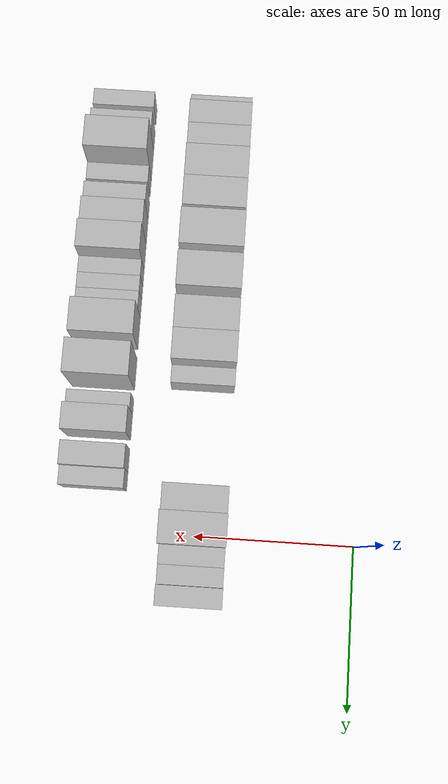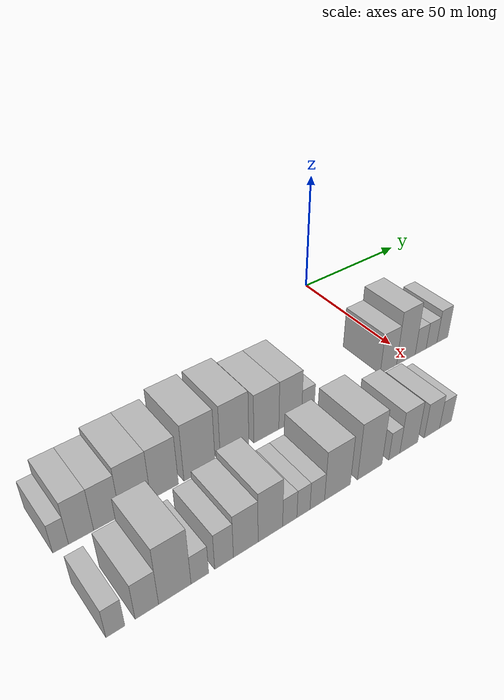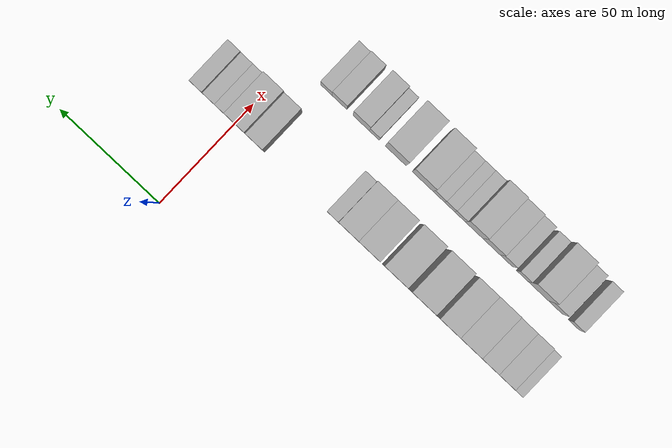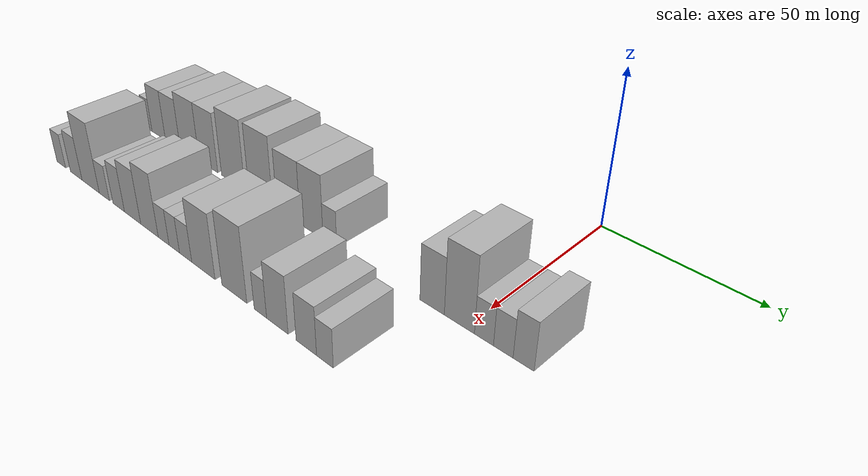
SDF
<sdf version="1.6">
 <world name="default">
  <model name="building_14">
   <static>1</static>
   <pose>50.0000 -140.4403 0 0.000000 0.000000 0.000000</pose>
   <link name="link">
    <pose>0 0 6.00 0 0 0</pose>
    <collision name="collision"><geometry><box><size>20.0000 4.8661 12.0000</size></box></geometry></collision>
    <visual name="visual">
     <cast_shadows>0</cast_shadows>
     <geometry><box><size>20.0000 4.8661 12.0000</size></box></geometry>
     <material>
      <script>
       <uri>model://HANNAS_wall/materials/scripts</uri>
       <uri>model://HANNAS_wall/materials/textures</uri>
       <name>vrc/HANNAS_wall</name>
      </script>
     </material>
    </visual>
   </link>
  </model>
  <model name="building_15">
   <static>1</static>
   <pose>50.0000 -134.0375 0 0.000000 0.000000 0.000000</pose>
   <link name="link">
    <pose>0 0 9.00 0 0 0</pose>
    <collision name="collision"><geometry><box><size>20.0000 7.9396 18.0000</size></box></geometry></collision>
    <visual name="visual">
     <cast_shadows>0</cast_shadows>
     <geometry><box><size>20.0000 7.9396 18.0000</size></box></geometry>
     <material>
      <script>
       <uri>model://HANNAS_wall/materials/scripts</uri>
       <uri>model://HANNAS_wall/materials/textures</uri>
       <name>vrc/HANNAS_wall</name>
      </script>
     </material>
    </visual>
   </link>
  </model>
  <model name="building_16">
   <static>1</static>
   <pose>50.0000 -125.7785 0 0.000000 0.000000 0.000000</pose>
   <link name="link">
    <pose>0 0 9.00 0 0 0</pose>
    <collision name="collision"><geometry><box><size>20.0000 8.5782 18.0000</size></box></geometry></collision>
    <visual name="visual">
     <cast_shadows>0</cast_shadows>
     <geometry><box><size>20.0000 8.5782 18.0000</size></box></geometry>
     <material>
      <script>
       <uri>model://HANNAS_wall/materials/scripts</uri>
       <uri>model://HANNAS_wall/materials/textures</uri>
       <name>vrc/HANNAS_wall</name>
      </script>
     </material>
    </visual>
   </link>
  </model>
  <model name="building_17">
   <static>1</static>
   <pose>50.0000 -116.2439 0 0.000000 0.000000 0.000000</pose>
   <link name="link">
    <pose>0 0 10.50 0 0 0</pose>
    <collision name="collision"><geometry><box><size>20.0000 10.4910 21.0000</size></box></geometry></collision>
    <visual name="visual">
     <cast_shadows>0</cast_shadows>
     <geometry><box><size>20.0000 10.4910 21.0000</size></box></geometry>
     <material>
      <script>
       <uri>model://HANNAS_wall/materials/scripts</uri>
       <uri>model://HANNAS_wall/materials/textures</uri>
       <name>vrc/HANNAS_wall</name>
      </script>
     </material>
    </visual>
   </link>
  </model>
  <model name="building_18">
   <static>1</static>
   <pose>50.0000 -106.0777 0 0.000000 0.000000 0.000000</pose>
   <link name="link">
    <pose>0 0 10.50 0 0 0</pose>
    <collision name="collision"><geometry><box><size>20.0000 9.8415 21.0000</size></box></geometry></collision>
    <visual name="visual">
     <cast_shadows>0</cast_shadows>
     <geometry><box><size>20.0000 9.8415 21.0000</size></box></geometry>
     <material>
      <script>
       <uri>model://HANNAS_wall/materials/scripts</uri>
       <uri>model://HANNAS_wall/materials/textures</uri>
       <name>vrc/HANNAS_wall</name>
      </script>
     </material>
    </visual>
   </link>
  </model>
  <model name="building_19">
   <static>1</static>
   <pose>50.0000 -93.3083 0 0.000000 0.000000 0.000000</pose>
   <link name="link">
    <pose>0 0 12.00 0 0 0</pose>
    <collision name="collision"><geometry><box><size>20.0000 11.6972 24.0000</size></box></geometry></collision>
    <visual name="visual">
     <cast_shadows>0</cast_shadows>
     <geometry><box><size>20.0000 11.6972 24.0000</size></box></geometry>
     <material>
      <script>
       <uri>model://HANNAS_wall/materials/scripts</uri>
       <uri>model://HANNAS_wall/materials/textures</uri>
       <name>vrc/HANNAS_wall</name>
      </script>
     </material>
    </visual>
   </link>
  </model>
  <model name="building_20">
   <static>1</static>
   <pose>50.0000 -79.8565 0 0.000000 0.000000 0.000000</pose>
   <link name="link">
    <pose>0 0 12.00 0 0 0</pose>
    <collision name="collision"><geometry><box><size>20.0000 11.2065 24.0000</size></box></geometry></collision>
    <visual name="visual">
     <cast_shadows>0</cast_shadows>
     <geometry><box><size>20.0000 11.2065 24.0000</size></box></geometry>
     <material>
      <script>
       <uri>model://HANNAS_wall/materials/scripts</uri>
       <uri>model://HANNAS_wall/materials/textures</uri>
       <name>vrc/HANNAS_wall</name>
      </script>
     </material>
    </visual>
   </link>
  </model>
  <model name="building_21">
   <static>1</static>
   <pose>50.0000 -67.0603 0 0.000000 0.000000 0.000000</pose>
   <link name="link">
    <pose>0 0 10.50 0 0 0</pose>
    <collision name="collision"><geometry><box><size>20.0000 10.3857 21.0000</size></box></geometry></collision>
    <visual name="visual">
     <cast_shadows>0</cast_shadows>
     <geometry><box><size>20.0000 10.3857 21.0000</size></box></geometry>
     <material>
      <script>
       <uri>model://HANNAS_wall/materials/scripts</uri>
       <uri>model://HANNAS_wall/materials/textures</uri>
       <name>vrc/HANNAS_wall</name>
      </script>
     </material>
    </visual>
   </link>
  </model>
  <model name="building_22">
   <static>1</static>
   <pose>50.0000 -57.0020 0 0.000000 0.000000 0.000000</pose>
   <link name="link">
    <pose>0 0 10.50 0 0 0</pose>
    <collision name="collision"><geometry><box><size>20.0000 9.7309 21.0000</size></box></geometry></collision>
    <visual name="visual">
     <cast_shadows>0</cast_shadows>
     <geometry><box><size>20.0000 9.7309 21.0000</size></box></geometry>
     <material>
      <script>
       <uri>model://HANNAS_wall/materials/scripts</uri>
       <uri>model://HANNAS_wall/materials/textures</uri>
       <name>vrc/HANNAS_wall</name>
      </script>
     </material>
    </visual>
   </link>
  </model>
  <model name="building_23">
   <static>1</static>
   <pose>50.0000 -49.3145 0 0.000000 0.000000 0.000000</pose>
   <link name="link">
    <pose>0 0 6.00 0 0 0</pose>
    <collision name="collision"><geometry><box><size>20.0000 5.6441 12.0000</size></box></geometry></collision>
    <visual name="visual">
     <cast_shadows>0</cast_shadows>
     <geometry><box><size>20.0000 5.6441 12.0000</size></box></geometry>
     <material>
      <script>
       <uri>model://HANNAS_wall/materials/scripts</uri>
       <uri>model://HANNAS_wall/materials/textures</uri>
       <name>vrc/HANNAS_wall</name>
      </script>
     </material>
    </visual>
   </link>
  </model>
  <model name="building_24">
   <static>1</static>
   <pose>50.0000 -11.0060 0 0.000000 0.000000 0.000000</pose>
   <link name="link">
    <pose>0 0 9.00 0 0 0</pose>
    <collision name="collision"><geometry><box><size>20.0000 8.3243 18.0000</size></box></geometry></collision>
    <visual name="visual">
     <cast_shadows>0</cast_shadows>
     <geometry><box><size>20.0000 8.3243 18.0000</size></box></geometry>
     <material>
      <script>
       <uri>model://HANNAS_wall/materials/scripts</uri>
       <uri>model://HANNAS_wall/materials/textures</uri>
       <name>vrc/HANNAS_wall</name>
      </script>
     </material>
    </visual>
   </link>
  </model>
  <model name="building_25">
   <static>1</static>
   <pose>50.0000 -1.9541 0 0.000000 0.000000 0.000000</pose>
   <link name="link">
    <pose>0 0 12.00 0 0 0</pose>
    <collision name="collision"><geometry><box><size>20.0000 9.7796 24.0000</size></box></geometry></collision>
    <visual name="visual">
     <cast_shadows>0</cast_shadows>
     <geometry><box><size>20.0000 9.7796 24.0000</size></box></geometry>
     <material>
      <script>
       <uri>model://HANNAS_wall/materials/scripts</uri>
       <uri>model://HANNAS_wall/materials/textures</uri>
       <name>vrc/HANNAS_wall</name>
      </script>
     </material>
    </visual>
   </link>
  </model>
  <model name="building_26">
   <static>1</static>
   <pose>50.0000 5.8931 0 0.000000 0.000000 0.000000</pose>
   <link name="link">
    <pose>0 0 6.00 0 0 0</pose>
    <collision name="collision"><geometry><box><size>20.0000 5.9147 12.0000</size></box></geometry></collision>
    <visual name="visual">
     <cast_shadows>0</cast_shadows>
     <geometry><box><size>20.0000 5.9147 12.0000</size></box></geometry>
     <material>
      <script>
       <uri>model://HANNAS_wall/materials/scripts</uri>
       <uri>model://HANNAS_wall/materials/textures</uri>
       <name>vrc/HANNAS_wall</name>
      </script>
     </material>
    </visual>
   </link>
  </model>
  <model name="building_27">
   <static>1</static>
   <pose>50.0000 11.8001 0 0.000000 0.000000 0.000000</pose>
   <link name="link">
    <pose>0 0 6.00 0 0 0</pose>
    <collision name="collision"><geometry><box><size>20.0000 5.8994 12.0000</size></box></geometry></collision>
    <visual name="visual">
     <cast_shadows>0</cast_shadows>
     <geometry><box><size>20.0000 5.8994 12.0000</size></box></geometry>
     <material>
      <script>
       <uri>model://HANNAS_wall/materials/scripts</uri>
       <uri>model://HANNAS_wall/materials/textures</uri>
       <name>vrc/HANNAS_wall</name>
      </script>
     </material>
    </visual>
   </link>
  </model>
  <model name="building_28">
   <static>1</static>
   <pose>50.0000 17.8143 0 0.000000 0.000000 0.000000</pose>
   <link name="link">
    <pose>0 0 7.50 0 0 0</pose>
    <collision name="collision"><geometry><box><size>20.0000 6.1291 15.0000</size></box></geometry></collision>
    <visual name="visual">
     <cast_shadows>0</cast_shadows>
     <geometry><box><size>20.0000 6.1291 15.0000</size></box></geometry>
     <material>
      <script>
       <uri>model://HANNAS_wall/materials/scripts</uri>
       <uri>model://HANNAS_wall/materials/textures</uri>
       <name>vrc/HANNAS_wall</name>
      </script>
     </material>
    </visual>
   </link>
  </model>
  <model name="building_75">
   <static>1</static>
   <pose>82.0000 -140.2134 0 0.000000 0.000000 0.000000</pose>
   <link name="link">
    <pose>0 0 6.00 0 0 0</pose>
    <collision name="collision"><geometry><box><size>20.0000 5.4988 12.0000</size></box></geometry></collision>
    <visual name="visual">
     <cast_shadows>0</cast_shadows>
     <geometry><box><size>20.0000 5.4988 12.0000</size></box></geometry>
     <material>
      <script>
       <uri>model://HANNAS_wall/materials/scripts</uri>
       <uri>model://HANNAS_wall/materials/textures</uri>
       <name>vrc/HANNAS_wall</name>
      </script>
     </material>
    </visual>
   </link>
  </model>
  <model name="building_76">
   <static>1</static>
   <pose>82.0000 -130.9095 0 0.000000 0.000000 0.000000</pose>
   <link name="link">
    <pose>0 0 7.50 0 0 0</pose>
    <collision name="collision"><geometry><box><size>20.0000 7.1091 15.0000</size></box></geometry></collision>
    <visual name="visual">
     <cast_shadows>0</cast_shadows>
     <geometry><box><size>20.0000 7.1091 15.0000</size></box></geometry>
     <material>
      <script>
       <uri>model://HANNAS_wall/materials/scripts</uri>
       <uri>model://HANNAS_wall/materials/textures</uri>
       <name>vrc/HANNAS_wall</name>
      </script>
     </material>
    </visual>
   </link>
  </model>
  <model name="building_77">
   <static>1</static>
   <pose>82.0000 -122.2556 0 0.000000 0.000000 0.000000</pose>
   <link name="link">
    <pose>0 0 12.00 0 0 0</pose>
    <collision name="collision"><geometry><box><size>20.0000 10.1987 24.0000</size></box></geometry></collision>
    <visual name="visual">
     <cast_shadows>0</cast_shadows>
     <geometry><box><size>20.0000 10.1987 24.0000</size></box></geometry>
     <material>
      <script>
       <uri>model://HANNAS_wall/materials/scripts</uri>
       <uri>model://HANNAS_wall/materials/textures</uri>
       <name>vrc/HANNAS_wall</name>
      </script>
     </material>
    </visual>
   </link>
  </model>
  <model name="building_78">
   <static>1</static>
   <pose>82.0000 -114.2787 0 0.000000 0.000000 0.000000</pose>
   <link name="link">
    <pose>0 0 6.00 0 0 0</pose>
    <collision name="collision"><geometry><box><size>20.0000 5.7551 12.0000</size></box></geometry></collision>
    <visual name="visual">
     <cast_shadows>0</cast_shadows>
     <geometry><box><size>20.0000 5.7551 12.0000</size></box></geometry>
     <material>
      <script>
       <uri>model://HANNAS_wall/materials/scripts</uri>
       <uri>model://HANNAS_wall/materials/textures</uri>
       <name>vrc/HANNAS_wall</name>
      </script>
     </material>
    </visual>
   </link>
  </model>
  <model name="building_79">
   <static>1</static>
   <pose>82.0000 -106.2372 0 0.000000 0.000000 0.000000</pose>
   <link name="link">
    <pose>0 0 7.50 0 0 0</pose>
    <collision name="collision"><geometry><box><size>20.0000 6.3278 15.0000</size></box></geometry></collision>
    <visual name="visual">
     <cast_shadows>0</cast_shadows>
     <geometry><box><size>20.0000 6.3278 15.0000</size></box></geometry>
     <material>
      <script>
       <uri>model://HANNAS_wall/materials/scripts</uri>
       <uri>model://HANNAS_wall/materials/textures</uri>
       <name>vrc/HANNAS_wall</name>
      </script>
     </material>
    </visual>
   </link>
  </model>
  <model name="building_80">
   <static>1</static>
   <pose>82.0000 -98.7520 0 0.000000 0.000000 0.000000</pose>
   <link name="link">
    <pose>0 0 9.00 0 0 0</pose>
    <collision name="collision"><geometry><box><size>20.0000 8.6426 18.0000</size></box></geometry></collision>
    <visual name="visual">
     <cast_shadows>0</cast_shadows>
     <geometry><box><size>20.0000 8.6426 18.0000</size></box></geometry>
     <material>
      <script>
       <uri>model://HANNAS_wall/materials/scripts</uri>
       <uri>model://HANNAS_wall/materials/textures</uri>
       <name>vrc/HANNAS_wall</name>
      </script>
     </material>
    </visual>
   </link>
  </model>
  <model name="building_81">
   <static>1</static>
   <pose>82.0000 -89.9632 0 0.000000 0.000000 0.000000</pose>
   <link name="link">
    <pose>0 0 10.50 0 0 0</pose>
    <collision name="collision"><geometry><box><size>20.0000 8.9351 21.0000</size></box></geometry></collision>
    <visual name="visual">
     <cast_shadows>0</cast_shadows>
     <geometry><box><size>20.0000 8.9351 21.0000</size></box></geometry>
     <material>
      <script>
       <uri>model://HANNAS_wall/materials/scripts</uri>
       <uri>model://HANNAS_wall/materials/textures</uri>
       <name>vrc/HANNAS_wall</name>
      </script>
     </material>
    </visual>
   </link>
  </model>
  <model name="building_82">
   <static>1</static>
   <pose>82.0000 -82.8178 0 0.000000 0.000000 0.000000</pose>
   <link name="link">
    <pose>0 0 6.00 0 0 0</pose>
    <collision name="collision"><geometry><box><size>20.0000 5.3557 12.0000</size></box></geometry></collision>
    <visual name="visual">
     <cast_shadows>0</cast_shadows>
     <geometry><box><size>20.0000 5.3557 12.0000</size></box></geometry>
     <material>
      <script>
       <uri>model://HANNAS_wall/materials/scripts</uri>
       <uri>model://HANNAS_wall/materials/textures</uri>
       <name>vrc/HANNAS_wall</name>
      </script>
     </material>
    </visual>
   </link>
  </model>
  <model name="building_83">
   <static>1</static>
   <pose>82.0000 -77.6293 0 0.000000 0.000000 0.000000</pose>
   <link name="link">
    <pose>0 0 6.00 0 0 0</pose>
    <collision name="collision"><geometry><box><size>20.0000 5.0212 12.0000</size></box></geometry></collision>
    <visual name="visual">
     <cast_shadows>0</cast_shadows>
     <geometry><box><size>20.0000 5.0212 12.0000</size></box></geometry>
     <material>
      <script>
       <uri>model://HANNAS_wall/materials/scripts</uri>
       <uri>model://HANNAS_wall/materials/textures</uri>
       <name>vrc/HANNAS_wall</name>
      </script>
     </material>
    </visual>
   </link>
  </model>
  <model name="building_84">
   <static>1</static>
   <pose>82.0000 -72.2517 0 0.000000 0.000000 0.000000</pose>
   <link name="link">
    <pose>0 0 6.00 0 0 0</pose>
    <collision name="collision"><geometry><box><size>20.0000 5.7340 12.0000</size></box></geometry></collision>
    <visual name="visual">
     <cast_shadows>0</cast_shadows>
     <geometry><box><size>20.0000 5.7340 12.0000</size></box></geometry>
     <material>
      <script>
       <uri>model://HANNAS_wall/materials/scripts</uri>
       <uri>model://HANNAS_wall/materials/textures</uri>
       <name>vrc/HANNAS_wall</name>
      </script>
     </material>
    </visual>
   </link>
  </model>
  <model name="building_85">
   <static>1</static>
   <pose>82.0000 -64.1401 0 0.000000 0.000000 0.000000</pose>
   <link name="link">
    <pose>0 0 10.50 0 0 0</pose>
    <collision name="collision"><geometry><box><size>20.0000 10.4892 21.0000</size></box></geometry></collision>
    <visual name="visual">
     <cast_shadows>0</cast_shadows>
     <geometry><box><size>20.0000 10.4892 21.0000</size></box></geometry>
     <material>
      <script>
       <uri>model://HANNAS_wall/materials/scripts</uri>
       <uri>model://HANNAS_wall/materials/textures</uri>
       <name>vrc/HANNAS_wall</name>
      </script>
     </material>
    </visual>
   </link>
  </model>
  <model name="building_86">
   <static>1</static>
   <pose>82.0000 -50.6469 0 0.000000 0.000000 0.000000</pose>
   <link name="link">
    <pose>0 0 12.00 0 0 0</pose>
    <collision name="collision"><geometry><box><size>20.0000 10.4971 24.0000</size></box></geometry></collision>
    <visual name="visual">
     <cast_shadows>0</cast_shadows>
     <geometry><box><size>20.0000 10.4971 24.0000</size></box></geometry>
     <material>
      <script>
       <uri>model://HANNAS_wall/materials/scripts</uri>
       <uri>model://HANNAS_wall/materials/textures</uri>
       <name>vrc/HANNAS_wall</name>
      </script>
     </material>
    </visual>
   </link>
  </model>
  <model name="building_87">
   <static>1</static>
   <pose>82.0000 -39.9270 0 0.000000 0.000000 0.000000</pose>
   <link name="link">
    <pose>0 0 6.00 0 0 0</pose>
    <collision name="collision"><geometry><box><size>20.0000 4.9427 12.0000</size></box></geometry></collision>
    <visual name="visual">
     <cast_shadows>0</cast_shadows>
     <geometry><box><size>20.0000 4.9427 12.0000</size></box></geometry>
     <material>
      <script>
       <uri>model://HANNAS_wall/materials/scripts</uri>
       <uri>model://HANNAS_wall/materials/textures</uri>
       <name>vrc/HANNAS_wall</name>
      </script>
     </material>
    </visual>
   </link>
  </model>
  <model name="building_88">
   <static>1</static>
   <pose>82.0000 -33.3212 0 0.000000 0.000000 0.000000</pose>
   <link name="link">
    <pose>0 0 9.00 0 0 0</pose>
    <collision name="collision"><geometry><box><size>20.0000 8.2690 18.0000</size></box></geometry></collision>
    <visual name="visual">
     <cast_shadows>0</cast_shadows>
     <geometry><box><size>20.0000 8.2690 18.0000</size></box></geometry>
     <material>
      <script>
       <uri>model://HANNAS_wall/materials/scripts</uri>
       <uri>model://HANNAS_wall/materials/textures</uri>
       <name>vrc/HANNAS_wall</name>
      </script>
     </material>
    </visual>
   </link>
  </model>
  <model name="building_89">
   <static>1</static>
   <pose>82.0000 -22.4970 0 0.000000 0.000000 0.000000</pose>
   <link name="link">
    <pose>0 0 7.50 0 0 0</pose>
    <collision name="collision"><geometry><box><size>20.0000 7.3794 15.0000</size></box></geometry></collision>
    <visual name="visual">
     <cast_shadows>0</cast_shadows>
     <geometry><box><size>20.0000 7.3794 15.0000</size></box></geometry>
     <material>
      <script>
       <uri>model://HANNAS_wall/materials/scripts</uri>
       <uri>model://HANNAS_wall/materials/textures</uri>
       <name>vrc/HANNAS_wall</name>
      </script>
     </material>
    </visual>
   </link>
  </model>
  <model name="building_90">
   <static>1</static>
   <pose>82.0000 -15.8808 0 0.000000 0.000000 0.000000</pose>
   <link name="link">
    <pose>0 0 6.00 0 0 0</pose>
    <collision name="collision"><geometry><box><size>20.0000 5.8530 12.0000</size></box></geometry></collision>
    <visual name="visual">
     <cast_shadows>0</cast_shadows>
     <geometry><box><size>20.0000 5.8530 12.0000</size></box></geometry>
     <material>
      <script>
       <uri>model://HANNAS_wall/materials/scripts</uri>
       <uri>model://HANNAS_wall/materials/textures</uri>
       <name>vrc/HANNAS_wall</name>
      </script>
     </material>
    </visual>
   </link>
  </model>
 </world>
</sdf>
